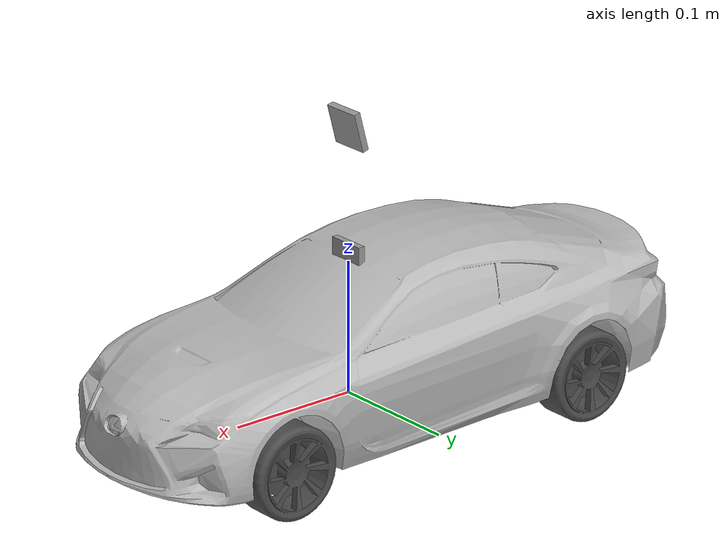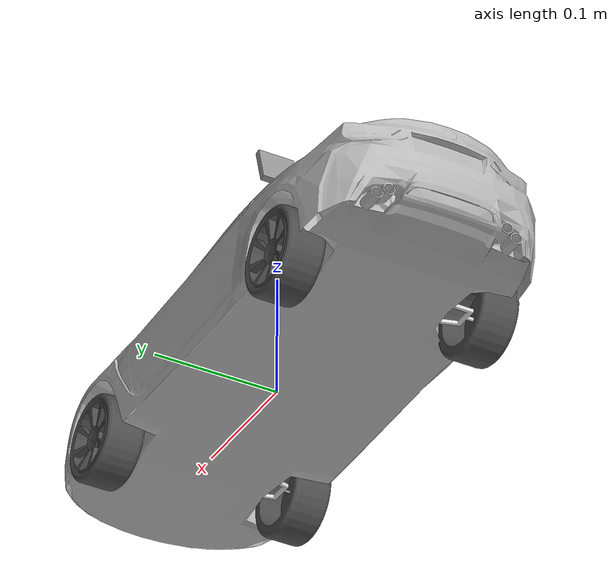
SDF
<?xml version='1.0'?>
<sdf version='1.6'>
  <model name='automobile'>
    <link name='base_link'>
      <include>
        <uri>model://base_link</uri>
        <pose>0 0 0 0 0 0</pose>
      </include>
    </link>
    <joint name='mycar_joint' type='fixed'>
      <parent>chassis::link</parent>
      <child>base_link</child>
    </joint>
    <include>
      <uri>model://chassis</uri>
      <pose>0 0 0 0 0 0</pose>
    </include>
    <!-- including a left rear wheel -->
    <include>
      <uri>model://wheel_left</uri>
      <pose>-0.152 0.081 0 0 0 0</pose>
      <name>wheel_rear_left</name>
    </include>
    <!-- including a front rear wheel -->
    <include>
      <uri>model://wheel_right</uri>
      <pose>-0.152 -0.081 0 0 0 0</pose>
      <name>wheel_rear_right</name>
    </include>
    <!-- including a left steering comp. -->
    <include>
      <uri>model://steering_column</uri>
      <pose>0.112 0.0725 0 0 0 0</pose>
      <name>steer_left</name>
    </include>
    <!-- including a right steering comp. -->
    <include>
      <uri>model://steering_column</uri>
      <pose>0.112 -0.0725 0 0 0 0</pose>
      <name>steer_right</name>
    </include>
    <!-- including a left front wheel -->
    <include>
      <uri>model://wheel_left</uri>
      <pose>0.118 0.081 0 0 0 0</pose>
      <name>wheel_front_left</name>
    </include>
    <!-- including a right front wheel -->
    <include>
      <uri>model://wheel_right</uri>
      <pose>0.118 -0.081 0 0 0 0</pose>
      <name>wheel_front_right</name>
    </include>

    <!-- including the camera link -->
    <include>
      <uri>model://camera</uri>
      <pose>0 0 0.2 0 0.2617 0</pose>
      <name>camera</name>
    </include>

    <!-- including the laser link -->
    <include>
      <uri>model://laser</uri>
      <pose>0 0 0.1 0 0 0</pose>
      <name>laser</name>
    </include>

    <!-- includeing the car body -->
    <include>
      <uri>model://car_body</uri>
      <pose>-0.024 0.0 -0.028 0 0.0 0</pose>
      <name>car_body</name>
    </include>

    <!-- LIST OF JOINTS -->
    <joint name='joint_leftrear_rim' type='revolute'>
      <parent>chassis::link</parent>
      <child>wheel_rear_left::link_rim</child>
      <pose frame=''>0 0 0 0 -0 0</pose>
      <axis>
        <xyz>0 0 -1</xyz>
        <use_parent_model_frame>0</use_parent_model_frame>
        <limit>
          <lower>-1.79769e+308</lower>
          <upper>1.79769e+308</upper>
          <effort>-1</effort>
          <velocity>-1</velocity>
        </limit>
        <dynamics>
          <spring_reference>0</spring_reference>
          <spring_stiffness>0</spring_stiffness>
          <damping>0</damping>
          <friction>0</friction>
        </dynamics>
      </axis>
      <physics>
        <ode>
          <limit>
            <cfm>0</cfm>
            <erp>0.2</erp>
          </limit>
          <suspension>
            <cfm>0</cfm>
            <erp>0.2</erp>
          </suspension>
        </ode>
      </physics>
    </joint>

    <joint name='joint_rightrear_rim' type='revolute'>
      <parent>chassis::link</parent>
      <child>wheel_rear_right::link_rim</child>
      <pose frame=''>0 0 0 0 -0 0</pose>
      <axis>
        <xyz>0 0 -1</xyz>
        <use_parent_model_frame>0</use_parent_model_frame>
        <limit>
          <lower>-1.79769e+308</lower>
          <upper>1.79769e+308</upper>
          <effort>-1</effort>
          <velocity>-1</velocity>
        </limit>
        <dynamics>
          <spring_reference>0</spring_reference>
          <spring_stiffness>0</spring_stiffness>
          <damping>0</damping>
          <friction>0</friction>
        </dynamics>
      </axis>
      <physics>
        <ode>
          <limit>
            <cfm>0</cfm>
            <erp>0.2</erp>
          </limit>
          <suspension>
            <cfm>0</cfm>
            <erp>0.2</erp>
          </suspension>
        </ode>
      </physics>
    </joint>

    <!-- Front right joint between the chassis and the steering comp. -->
    <joint name='joint_leftfront_steer' type='revolute'>
      <parent>chassis::link</parent>
      <child>steer_left::link_steer</child>
      <pose frame=''>0 0 0.005 0 -0 0</pose>
      <axis>
        <xyz>0 1 0</xyz>
        <use_parent_model_frame>0</use_parent_model_frame>
        <limit>
          <lower>-1.79769e+308</lower>
          <upper>1.79769e+308</upper>
          <effort>-1</effort>
          <velocity>-1</velocity>
        </limit>
        <dynamics>
          <spring_reference>0</spring_reference>
          <spring_stiffness>0</spring_stiffness>
          <damping>0</damping>
          <friction>0</friction>
        </dynamics>
      </axis>
      <physics>
        <ode>
          <limit>
            <cfm>0</cfm>
            <erp>0.2</erp>
          </limit>
          <suspension>
            <cfm>0</cfm>
            <erp>0.2</erp>
          </suspension>
        </ode>
      </physics>
    </joint>
    <!-- Front left joint between the chassis and the steering comp. -->
    <joint name='joint_rightfront_steer' type='revolute'>
      <parent>chassis::link</parent>
      <child>steer_right::link_steer</child>
      <pose frame=''>0 0 -0.005 0 -0 0</pose>
      <axis>
        <xyz>0 1 0</xyz>
        <use_parent_model_frame>0</use_parent_model_frame>
        <limit>
          <lower>-1.79769e+308</lower>
          <upper>1.79769e+308</upper>
          <effort>-1</effort>
          <velocity>-1</velocity>
        </limit>
        <dynamics>
          <spring_reference>0</spring_reference>
          <spring_stiffness>0</spring_stiffness>
          <damping>0</damping>
          <friction>0</friction>
        </dynamics>
      </axis>
      <physics>
        <ode>
          <limit>
            <cfm>0</cfm>
            <erp>0.2</erp>
          </limit>
          <suspension>
            <cfm>0</cfm>
            <erp>0.2</erp>
          </suspension>
        </ode>
      </physics>
    </joint>

    <!-- Right joint between the steering and the rim   -->
    <joint name='joint_rightfront_rim' type='revolute'>
      <parent>steer_right::link_steer</parent>
      <child>wheel_front_right::link_rim</child>
      <pose frame=''>0 0 0 0 -0 0</pose>
      <axis>
        <xyz>0 0 -1</xyz>
        <use_parent_model_frame>0</use_parent_model_frame>
        <limit>
          <lower>-1.79769e+308</lower>
          <upper>1.79769e+308</upper>
          <effort>-1</effort>
          <velocity>-1</velocity>
        </limit>
        <dynamics>
          <spring_reference>0</spring_reference>
          <spring_stiffness>0</spring_stiffness>
          <damping>0</damping>
          <friction>0</friction>
        </dynamics>
      </axis>
      <physics>
        <ode>
          <limit>
            <cfm>0</cfm>
            <erp>0.2</erp>
          </limit>
          <suspension>
            <cfm>0</cfm>
            <erp>0.2</erp>
          </suspension>
        </ode>
      </physics>
    </joint>

    <!-- Left joint between the steering and the rim   -->
    <joint name='joint_leftfront_rim' type='revolute'>
      <parent>steer_left::link_steer</parent>
      <child>wheel_front_left::link_rim</child>
      <pose frame=''>0 0 0 0 -0 0</pose>
      <axis>
        <xyz>0 0 -1</xyz>
        <use_parent_model_frame>0</use_parent_model_frame>
        <limit>
          <lower>-1.79769e+308</lower>
          <upper>1.79769e+308</upper>
          <effort>-1</effort>
          <velocity>-1</velocity>
        </limit>
        <dynamics>
          <spring_reference>0</spring_reference>
          <spring_stiffness>0</spring_stiffness>
          <damping>0</damping>
          <friction>0</friction>
        </dynamics>
      </axis>
      <physics>
        <ode>
          <limit>
            <cfm>0</cfm>
            <erp>0.2</erp>
          </limit>
          <suspension>
            <cfm>0</cfm>
            <erp>0.2</erp>
          </suspension>
        </ode>
      </physics>
    </joint>

    <!-- fixed joint for the car body -->
    <joint name='joint_body' type='fixed'>
      <parent>chassis::link</parent>
      <child>car_body::link</child>
      <pose frame=''>0 0 0 0 -0 0</pose>
      <physics>
        <ode>
          <limit>
            <cfm>0</cfm>
            <erp>0.2</erp>
          </limit>
          <suspension>
            <cfm>0</cfm>
            <erp>0.2</erp>
          </suspension>
        </ode>
      </physics>
    </joint>

    <!-- fixed joint for the camera -->
    <joint name='joint_camera' type='fixed'>
      <parent>chassis::link</parent>
      <child>camera::link_camera</child>
      <pose frame=''>0 0 0 0 -0 0</pose>
      <physics>
        <ode>
          <limit>
            <cfm>0</cfm>
            <erp>0.2</erp>
          </limit>
          <suspension>
            <cfm>0</cfm>
            <erp>0.2</erp>
          </suspension>
        </ode>
      </physics>
    </joint>

    <!-- fixed joint for the laser -->
    <joint name='joint_laser' type='fixed'>
      <parent>chassis::link</parent>
      <child>laser::link_laser</child>
      <pose frame=''>0 0 0 0 -0 0</pose>
      <physics>
        <ode>
          <limit>
            <cfm>0</cfm>
            <erp>0.2</erp>
          </limit>
          <suspension>
            <cfm>0</cfm>
            <erp>0.2</erp>
          </suspension>
        </ode>
      </physics>
    </joint>

    <!-- Plugin  -->
    <plugin name='CarLikeRobotPlugin' filename='libcar_plugin.so'>
      <wheelbase>0.26</wheelbase>
      <axletrack>0.162</axletrack>
      <wheelradius>0.0325</wheelradius>
      <speed_wheel_joints>
        <front_wheel_joints>
          <leftjoint>joint_leftfront_rim</leftjoint>
          <rightjoint>joint_rightfront_rim</rightjoint>
        </front_wheel_joints>
        <rear_wheel_joints>
          <leftjoint>joint_leftrear_rim</leftjoint>
          <rightjoint>joint_rightrear_rim</rightjoint>
        </rear_wheel_joints>
        <kp>0.01</kp>
        <ki>0.0</ki>
        <kd>0.0</kd>
      </speed_wheel_joints>
      <steer_wheel_joints>
        <leftjoint>joint_leftfront_steer</leftjoint>
        <rightjoint>joint_rightfront_steer</rightjoint>
        <kp>10</kp>
        <ki>0.0</ki>
        <kd>0.1</kd>
      </steer_wheel_joints>
      <initial_steer>0.0</initial_steer>
      <initial_speed>0.0</initial_speed>
      <robotNamespace>/</robotNamespace>
    </plugin>

    <!-- Plugin for publishing TF for the chassis -->

    <plugin name='bno055' filename='libbno055_plugin.so'> </plugin>
    <plugin name='gps' filename='libgps_plugin.so'> </plugin>

  </model>
</sdf>

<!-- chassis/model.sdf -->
<sdf version='1.6'>
  <model name='chassis'>
    <link name='link'>
      <inertial>
        <mass>0.26244</mass>
        <inertia>
          <ixx>0.00283444</ixx>
          <ixy>0</ixy>
          <ixz>0</ixz>
          <iyy>0.00039867</iyy>
          <iyz>0</iyz>
          <izz>0.00323293</izz>
        </inertia>
        <pose frame=''>0 0 0 0 -0 0</pose>
      </inertial>
      <pose frame=''>0 0 0 0 0 1.5708</pose>
      <gravity>1</gravity>
      <kinematic>0</kinematic>
      <enable_wind>0</enable_wind>
      <visual name='visual'>
        <pose frame=''>0 0 -0.0065 0 0 -1.57079</pose>
        <geometry>
          <mesh>
            <uri>model://chassis/meshes/chassisV5.dae</uri>
            <scale>1 1 1</scale>
          </mesh>
        </geometry>
        <material>
          <lighting>1</lighting>
          <shader type='vertex'>
            <normal_map>__default__</normal_map>
          </shader>
          <ambient>0.6 0.6 0.6 1</ambient>
          <diffuse>0.85 0.85 0.85 1</diffuse>
          <specular>0.6 0.6 0.6 1</specular>
          <emissive>0 0 0 1</emissive>
        </material>
        <transparency>0</transparency>
        <cast_shadows>1</cast_shadows>
      </visual>
      <collision name='collision'>
        <laser_retro>0</laser_retro>
        <max_contacts>10</max_contacts>
        <pose frame=''>0 0 0 0 -0 0</pose>
        <geometry>
          <box>
            <size>0.135 0.36 0.002</size>
          </box>
        </geometry>
        <surface>
          <friction>
            <ode>
              <mu>1</mu>
              <mu2>1</mu2>
              <fdir1>0 0 0</fdir1>
              <slip1>0</slip1>
              <slip2>0</slip2>
            </ode>
            <torsional>
              <coefficient>1</coefficient>
              <patch_radius>0</patch_radius>
              <surface_radius>0</surface_radius>
              <use_patch_radius>1</use_patch_radius>
              <ode>
                <slip>0</slip>
              </ode>
            </torsional>
          </friction>
          <bounce>
            <restitution_coefficient>0</restitution_coefficient>
            <threshold>1e+06</threshold>
          </bounce>
          <contact>
            <collide_without_contact>0</collide_without_contact>
            <collide_without_contact_bitmask>1</collide_without_contact_bitmask>
            <collide_bitmask>1</collide_bitmask>
            <ode>
              <soft_cfm>0</soft_cfm>
              <soft_erp>0.2</soft_erp>
              <kp>1e+13</kp>
              <kd>1</kd>
              <max_vel>0.01</max_vel>
              <min_depth>0</min_depth>
            </ode>
            <bullet>
              <split_impulse>1</split_impulse>
              <split_impulse_penetration_threshold>-0.01</split_impulse_penetration_threshold>
              <soft_cfm>0</soft_cfm>
              <soft_erp>0.2</soft_erp>
              <kp>1e+13</kp>
              <kd>1</kd>
            </bullet>
          </contact>
        </surface>
      </collision>
    </link>
  </model>
</sdf>

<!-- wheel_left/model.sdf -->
<sdf version='1.6'>
  <model name='wheel_left'>

    <link name='link_rim'>
      <inertial>
        <mass>0.038</mass>
        <inertia>
          <ixx>0.00001283</ixx>
          <ixy>0</ixy>
          <ixz>0</ixz>
          <iyy>0.00001283</iyy>
          <iyz>0</iyz>
          <izz>0.00002069</izz>
        </inertia>
        <pose frame=''>0 0 0 0 -0 0</pose>
      </inertial>
      <pose frame=''>0.0 0.0 0 1.5708 0 0</pose>
      <gravity>1</gravity>
      <kinematic>0</kinematic>
      <enable_wind>0</enable_wind>
      <visual name='visual'>
       <pose frame=''>0 0 0 -1.5708 0 0</pose>
       <geometry>
          <mesh>
            <uri>model://wheel_left/meshes/rim.dae</uri>
            <scale>1 1 1</scale>
          </mesh>
        </geometry>
        <material>
          <lighting>1</lighting>
          <shader type='vertex'>
            <normal_map>__default__</normal_map>
          </shader>
          <ambient>0.2 0.2 0.2 1</ambient>
          <diffuse>0.3 0.3 0.3 1</diffuse>
          <specular>0.5 0.5 0.5 1</specular>
          <emissive>0.0 0.0 0.0 0.0</emissive>
        </material>
        <transparency>0</transparency>
        <cast_shadows>1</cast_shadows>
      </visual>
      <collision name='collision'>
        <laser_retro>0</laser_retro>
        <max_contacts>10</max_contacts>
        <pose frame=''>0 0 0 0 -0 0</pose>
        <geometry>
          <cylinder>
            <radius>0.033000</radius>
            <length>0.028000</length>
          </cylinder>
        </geometry>
        <surface>
          <friction>
            <ode>
              <mu>0.7</mu>
              <mu2>0.7</mu2>
              <fdir1>0 0 0</fdir1>
              <slip1>0</slip1>
              <slip2>0</slip2>
            </ode>
            <torsional>
              <coefficient>1</coefficient>
              <patch_radius>0</patch_radius>
              <surface_radius>0</surface_radius>
              <use_patch_radius>1</use_patch_radius>
              <ode>
                <slip>0</slip>
              </ode>
            </torsional>
          </friction>
          <bounce>
            <restitution_coefficient>0</restitution_coefficient>
            <threshold>1e+06</threshold>
          </bounce>
          <contact>
            <collide_without_contact>0</collide_without_contact>
            <collide_without_contact_bitmask>1</collide_without_contact_bitmask>
            <collide_bitmask>1</collide_bitmask>
            <ode>
              <soft_cfm>0</soft_cfm>
              <soft_erp>0.2</soft_erp>
              <kp>1e+07</kp>
              <kd>1</kd>
              <max_vel>0.01</max_vel>
              <min_depth>0</min_depth>
            </ode>
            <bullet>
              <split_impulse>1</split_impulse>
              <split_impulse_penetration_threshold>-0.01</split_impulse_penetration_threshold>
              <soft_cfm>0</soft_cfm>
              <soft_erp>0.2</soft_erp>
              <kp>1e+07</kp>
              <kd>1</kd>
            </bullet>
          </contact>
        </surface>
      </collision>
    </link>

  </model>
</sdf>

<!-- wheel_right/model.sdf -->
<sdf version='1.6'>
  <model name='wheel_right'>

    <link name='link_rim'>
      <inertial>
        <mass>0.038</mass>
        <inertia>
          <ixx>0.00001283</ixx>
          <ixy>0</ixy>
          <ixz>0</ixz>
          <iyy>0.00001283</iyy>
          <iyz>0</iyz>
          <izz>0.00002069</izz>
        </inertia>
        <pose frame=''>0 0 0 0 -0 0</pose>
      </inertial>
      <pose frame=''>0.0 0.0 0 1.5708 0 0</pose>
      <gravity>1</gravity>
      <kinematic>0</kinematic>
      <enable_wind>0</enable_wind>
      <visual name='visual'>
       <pose frame=''>0 0 0 -1.5708 0 0</pose>
       <geometry>
          <mesh>
            <uri>model://wheel_right/meshes/rim.dae</uri>
            <scale>1 1 1</scale>
          </mesh>
        </geometry>
        <material>
          <lighting>1</lighting>
          <shader type='vertex'>
            <normal_map>__default__</normal_map>
          </shader>
          <ambient>0.2 0.2 0.2 1</ambient>
          <diffuse>0.3 0.3 0.3 1</diffuse>
          <specular>0.5 0.5 0.5 1</specular>
          <emissive>0.0 0.0 0.0 0.0</emissive>
        </material>
        <transparency>0</transparency>
        <cast_shadows>1</cast_shadows>
      </visual>
      <collision name='collision'>
        <laser_retro>0</laser_retro>
        <max_contacts>10</max_contacts>
        <pose frame=''>0 0 0 0 -0 0</pose>
        <geometry>
          <cylinder>
            <radius>0.033000</radius>
            <length>0.028000</length>
          </cylinder>
        </geometry>
        <surface>
          <friction>
            <ode>
              <mu>0.7</mu>
              <mu2>0.7</mu2>
              <fdir1>0 0 0</fdir1>
              <slip1>0</slip1>
              <slip2>0</slip2>
            </ode>
            <torsional>
              <coefficient>1</coefficient>
              <patch_radius>0</patch_radius>
              <surface_radius>0</surface_radius>
              <use_patch_radius>1</use_patch_radius>
              <ode>
                <slip>0</slip>
              </ode>
            </torsional>
          </friction>
          <bounce>
            <restitution_coefficient>0</restitution_coefficient>
            <threshold>1e+06</threshold>
          </bounce>
          <contact>
            <collide_without_contact>0</collide_without_contact>
            <collide_without_contact_bitmask>1</collide_without_contact_bitmask>
            <collide_bitmask>1</collide_bitmask>
            <ode>
              <soft_cfm>0</soft_cfm>
              <soft_erp>0.2</soft_erp>
              <kp>1e+07</kp>
              <kd>1</kd>
              <max_vel>0.01</max_vel>
              <min_depth>0</min_depth>
            </ode>
            <bullet>
              <split_impulse>1</split_impulse>
              <split_impulse_penetration_threshold>-0.01</split_impulse_penetration_threshold>
              <soft_cfm>0</soft_cfm>
              <soft_erp>0.2</soft_erp>
              <kp>1e+07</kp>
              <kd>1</kd>
            </bullet>
          </contact>
        </surface>
      </collision>
    </link>

  </model>
</sdf>

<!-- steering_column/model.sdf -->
<sdf version='1.6'>
  <model name='steering_column'>
    <link name='link_steer'>
      <inertial>
        <mass>0.001</mass>
        <inertia>
          <ixx>0.00014583</ixx>
          <ixy>0</ixy>
          <ixz>0</ixz>
          <iyy>0.00014583</iyy>
          <iyz>0</iyz>
          <izz>0.000125</izz>
        </inertia>
        <pose frame=''>0 0 0 0 -0 0</pose>
      </inertial>
      <pose frame=''>0 0 0 1.5708 0 0</pose>
      <gravity>1</gravity>
      <self_collide>0</self_collide>
      <kinematic>0</kinematic>
      <enable_wind>0</enable_wind>
      <visual name='visual'>
        <pose frame=''>0 0 0 0 -0 0</pose>
        <geometry>
          <cylinder>
            <radius>0.001</radius>
            <length>0.01</length>
          </cylinder>
        </geometry>
        <material>
          <lighting>1</lighting>
          <script>
            <uri>file://media/materials/scripts/gazebo.material</uri>
            <name>Gazebo/Grey</name>
          </script>
          <shader type='vertex'>
            <normal_map>__default__</normal_map>
          </shader>
          <ambient>0.3 0.3 0.3 1</ambient>
          <diffuse>0.7 0.7 0.7 1</diffuse>
          <specular>0.01 0.01 0.01 1</specular>
          <emissive>0 0 0 1</emissive>
        </material>
        <transparency>0</transparency>
        <cast_shadows>1</cast_shadows>
      </visual>
      <collision name='collision'>
        <laser_retro>0</laser_retro>
        <max_contacts>10</max_contacts>
        <pose frame=''>0 0 0 0 -0 0</pose>
        <geometry>
          <cylinder>
            <radius>0.001</radius>
            <length>0.01</length>
          </cylinder>
        </geometry>
        <surface>
          <friction>
            <ode>
              <mu>1</mu>
              <mu2>1</mu2>
              <fdir1>0 0 0</fdir1>
              <slip1>0</slip1>
              <slip2>0</slip2>
            </ode>
            <torsional>
              <coefficient>1</coefficient>
              <patch_radius>0</patch_radius>
              <surface_radius>0</surface_radius>
              <use_patch_radius>1</use_patch_radius>
              <ode>
                <slip>0</slip>
              </ode>
            </torsional>
          </friction>
          <bounce>
            <restitution_coefficient>0</restitution_coefficient>
            <threshold>1e+06</threshold>
          </bounce>
          <contact>
            <collide_without_contact>0</collide_without_contact>
            <collide_without_contact_bitmask>1</collide_without_contact_bitmask>
            <collide_bitmask>1</collide_bitmask>
            <ode>
              <soft_cfm>0</soft_cfm>
              <soft_erp>0.2</soft_erp>
              <kp>1e+13</kp>
              <kd>1</kd>
              <max_vel>0.01</max_vel>
              <min_depth>0</min_depth>
            </ode>
            <bullet>
              <split_impulse>1</split_impulse>
              <split_impulse_penetration_threshold>-0.01</split_impulse_penetration_threshold>
              <soft_cfm>0</soft_cfm>
              <soft_erp>0.2</soft_erp>
              <kp>1e+13</kp>
              <kd>1</kd>
            </bullet>
          </contact>
        </surface>
      </collision>
    </link>

  </model>
</sdf>

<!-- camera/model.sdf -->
<sdf version='1.6'>
  <model name='camera'>
    <link name='link_camera'>
      <inertial>
        <mass>0.0052875</mass>
        <inertia>
          <ixx>4.1e-07</ixx>
          <ixy>0</ixy>
          <ixz>0</ixz>
          <iyy>7.9e-07</iyy>
          <iyz>0</iyz>
          <izz>4.1e-07</izz>
        </inertia>
        <pose frame=''>0 0 0 0 -0 0</pose>
      </inertial>
      <pose frame=''>0 0 0 0 -0 0</pose>
      <gravity>1</gravity>
      <self_collide>0</self_collide>
      <kinematic>0</kinematic>
      <enable_wind>0</enable_wind>
      <visual name='visual'>
        <pose frame=''>0 0 0 0 -0 0</pose>
        <geometry>
          <box>
            <size>0.005 0.03 0.03</size>
          </box>
        </geometry>
        <material>
          <lighting>1</lighting>
          <script>
            <uri>file://media/materials/scripts/gazebo.material</uri>
            <name>Gazebo/Grey</name>
          </script>
          <shader type='vertex'>
            <normal_map>__default__</normal_map>
          </shader>
          <ambient>0.3 0.3 0.3 1</ambient>
          <diffuse>0.7 0.7 0.7 1</diffuse>
          <specular>0.01 0.01 0.01 1</specular>
          <emissive>0 0 0 1</emissive>
        </material>
        <transparency>0</transparency>
        <cast_shadows>1</cast_shadows>
      </visual>
      <collision name='collision'>
        <laser_retro>0</laser_retro>
        <max_contacts>10</max_contacts>
        <pose frame=''>0 0 0 0 -0 0</pose>
        <geometry>
          <box>
            <size>0.005 0.03 0.03</size>
          </box>
        </geometry>
        <surface>
          <friction>
            <ode>
              <mu>1</mu>
              <mu2>1</mu2>
              <fdir1>0 0 0</fdir1>
              <slip1>0</slip1>
              <slip2>0</slip2>
            </ode>
            <torsional>
              <coefficient>1</coefficient>
              <patch_radius>0</patch_radius>
              <surface_radius>0</surface_radius>
              <use_patch_radius>1</use_patch_radius>
              <ode>
                <slip>0</slip>
              </ode>
            </torsional>
          </friction>
          <bounce>
            <restitution_coefficient>0</restitution_coefficient>
            <threshold>1e+06</threshold>
          </bounce>
          <contact>
            <collide_without_contact>0</collide_without_contact>
            <collide_without_contact_bitmask>1</collide_without_contact_bitmask>
            <collide_bitmask>1</collide_bitmask>
            <ode>
              <soft_cfm>0</soft_cfm>
              <soft_erp>0.2</soft_erp>
              <kp>1e+13</kp>
              <kd>1</kd>
              <max_vel>0.01</max_vel>
              <min_depth>0</min_depth>
            </ode>
            <bullet>
              <split_impulse>1</split_impulse>
              <split_impulse_penetration_threshold>-0.01</split_impulse_penetration_threshold>
              <soft_cfm>0</soft_cfm>
              <soft_erp>0.2</soft_erp>
              <kp>1e+13</kp>
              <kd>1</kd>
            </bullet>
          </contact>
        </surface>
      </collision>

    <sensor name="imu_sensor" type="imu">
        <always_on>true</always_on>
        <update_rate>200</update_rate>
        <visualize>true</visualize>
        <topic>__default_topic__</topic>
        <plugin filename="libgazebo_ros_imu_sensor.so" name="imu_plugin">
          <robotNamespace/>
          <topicName>/camera/imu</topicName>
          <bodyName>imu_link</bodyName>
          <updateRateHZ>200.0</updateRateHZ>
          <gaussianNoise>0.02</gaussianNoise>
          <xyzOffset>0 0 0</xyzOffset>
          <rpyOffset>0 0 0</rpyOffset>
          <frameName>realsense</frameName>
          <initialOrientationAsReference>false</initialOrientationAsReference>
        </plugin>
      </sensor>
      <sensor name="color" type="camera">
        <pose frame="">0 -0.046 0.004 0 0 0</pose>
        <camera name="__default__">
          <horizontal_fov>1.047</horizontal_fov>
          <image>
            <width>640</width>
            <height>480</height>
            <format>RGB_INT8</format>
          </image>
          <clip>
            <near>0.1</near>
            <far>100</far>
          </clip>
          <noise>
            <type>gaussian</type>
            <mean>0.0</mean>
            <stddev>0.007</stddev>
          </noise>
        </camera>
        <always_on>1</always_on>
        <update_rate>60</update_rate>
        <visualize>1</visualize>
      </sensor>
      <sensor name="ired1" type="camera">
        <pose frame="">0 -0.06 0.004 0 0 0</pose>
        <camera name="__default__">
          <horizontal_fov>1.047</horizontal_fov>
          <image>
            <width>640</width>
            <height>480</height>
            <format>L_INT8</format>
          </image>
          <clip>
            <near>0.1</near>
            <far>100</far>
          </clip>
          <noise>
            <type>gaussian</type>
            <mean>0.0</mean>
            <stddev>0.007</stddev>
          </noise>
        </camera>
        <always_on>1</always_on>
        <update_rate>60</update_rate>
        <visualize>0</visualize>
      </sensor>
      <sensor name="ired2" type="camera">
        <pose frame="">0 0.01 0.004 0 0 0</pose>
        <camera name="__default__">
          <horizontal_fov>1.047</horizontal_fov>
          <image>
            <width>640</width>
            <height>480</height>
            <format>L_INT8</format>
          </image>
          <clip>
            <near>0.1</near>
            <far>100</far>
          </clip>
          <noise>
            <type>gaussian</type>
            <mean>0.0</mean>
            <stddev>0.007</stddev>
          </noise>
        </camera>
        <always_on>1</always_on>
        <update_rate>60</update_rate>
        <visualize>0</visualize>
      </sensor>
      <sensor name="depth" type="depth">
        <pose frame="">0 -0.03 0.004 0 0 0</pose>
        <camera name="__default__">
          <horizontal_fov>1.047</horizontal_fov>
          <image>
            <width>640</width>
            <height>480</height>
          </image>
          <clip>
            <near>0.1</near>
            <far>100</far>
          </clip>
          <noise>
            <type>gaussian</type>
            <mean>0.0</mean>
            <stddev>0.007</stddev>
          </noise>
        </camera>
        <always_on>1</always_on>
        <update_rate>60</update_rate>
        <visualize>0</visualize>
      </sensor>
    </link>
    <plugin name="camera" filename="librealsense_gazebo_plugin.so">
        <depthUpdateRate>30.0</depthUpdateRate>
        <colorUpdateRate>30.0</colorUpdateRate>
        <infraredUpdateRate>30.0</infraredUpdateRate>
        <depthTopicName>depth/image_raw</depthTopicName>
        <depthCameraInfoTopicName>depth/camera_info</depthCameraInfoTopicName>
        <colorTopicName>color/image_raw</colorTopicName>
        <colorCameraInfoTopicName>color/camera_info</colorCameraInfoTopicName>
        <infrared1TopicName>infra1/image_raw</infrared1TopicName>
        <infrared1CameraInfoTopicName>infra1/camera_info</infrared1CameraInfoTopicName>
        <infrared2TopicName>infra2/image_raw</infrared2TopicName>
        <infrared2CameraInfoTopicName>infra2/camera_info</infrared2CameraInfoTopicName>
        <colorOpticalframeName>camera_color_optical_frame</colorOpticalframeName>
        <depthOpticalframeName>camera_depth_optical_frame</depthOpticalframeName>
        <infrared1OpticalframeName>camera_infrared1_optical_frame</infrared1OpticalframeName>
        <infrared2OpticalframeName>camera_infrared2_optical_frame</infrared2OpticalframeName>
        <rangeMinDepth>0.2</rangeMinDepth>
        <rangeMaxDepth>10.0</rangeMaxDepth>
        <pointCloud>true</pointCloud>
        <pointCloudTopicName>depth/color/points</pointCloudTopicName>
        <pointCloudCutoff>0.25</pointCloudCutoff>
        <pointCloudCutoffMax>9.0</pointCloudCutoffMax>
      </plugin>

  </model>
</sdf>

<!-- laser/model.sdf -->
<sdf version='1.6'>
  <model name='laser'>
    <link name='link_laser'>
      <inertial>
        <mass>0.0052875</mass>
        <inertia>
          <ixx>4.1e-07</ixx>
          <ixy>0</ixy>
          <ixz>0</ixz>
          <iyy>7.9e-07</iyy>
          <iyz>0</iyz>
          <izz>4.1e-07</izz>
        </inertia>
        <pose frame=''>0 0 0 0 -0 0</pose>
      </inertial>
      <pose frame=''>0 0 0 0 -0 0</pose>
      <gravity>1</gravity>
      <self_collide>0</self_collide>
      <kinematic>0</kinematic>
      <enable_wind>0</enable_wind>
      <visual name='visual'>
        <pose frame=''>0 0 0 0 -0 0</pose>
        <geometry>
          <box>
            <size>0.005 0.03 0.03</size>
          </box>
        </geometry>
        <material>
          <lighting>1</lighting>
          <script>
            <uri>file://media/materials/scripts/gazebo.material</uri>
            <name>Gazebo/Grey</name>
          </script>
          <shader type='vertex'>
            <normal_map>__default__</normal_map>
          </shader>
          <ambient>0.3 0.3 0.3 1</ambient>
          <diffuse>0.7 0.7 0.7 1</diffuse>
          <specular>0.01 0.01 0.01 1</specular>
          <emissive>0 0 0 1</emissive>
        </material>
        <transparency>0</transparency>
        <cast_shadows>1</cast_shadows>
      </visual>
      <collision name='collision'>
        <laser_retro>0</laser_retro>
        <max_contacts>10</max_contacts>
        <pose frame=''>0 0 0 0 -0 0</pose>
        <geometry>
          <box>
            <size>0.005 0.03 0.03</size>
          </box>
        </geometry>
        <surface>
          <friction>
            <ode>
              <mu>1</mu>
              <mu2>1</mu2>
              <fdir1>0 0 0</fdir1>
              <slip1>0</slip1>
              <slip2>0</slip2>
            </ode>
            <torsional>
              <coefficient>1</coefficient>
              <patch_radius>0</patch_radius>
              <surface_radius>0</surface_radius>
              <use_patch_radius>1</use_patch_radius>
              <ode>
                <slip>0</slip>
              </ode>
            </torsional>
          </friction>
          <bounce>
            <restitution_coefficient>0</restitution_coefficient>
            <threshold>1e+06</threshold>
          </bounce>
          <contact>
            <collide_without_contact>0</collide_without_contact>
            <collide_without_contact_bitmask>1</collide_without_contact_bitmask>
            <collide_bitmask>1</collide_bitmask>
            <ode>
              <soft_cfm>0</soft_cfm>
              <soft_erp>0.2</soft_erp>
              <kp>1e+13</kp>
              <kd>1</kd>
              <max_vel>0.01</max_vel>
              <min_depth>0</min_depth>
            </ode>
            <bullet>
              <split_impulse>1</split_impulse>
              <split_impulse_penetration_threshold>-0.01</split_impulse_penetration_threshold>
              <soft_cfm>0</soft_cfm>
              <soft_erp>0.2</soft_erp>
              <kp>1e+13</kp>
              <kd>1</kd>
            </bullet>
          </contact>
        </surface>
      </collision>

      <sensor type="ray" name="rplidar">
        <pose>0 0 0 0 0 0</pose>
        <visualize>true</visualize>
        <update_rate>10</update_rate>
        <ray>
          <scan>
            <horizontal>
              <samples>360</samples>
              <resolution>1</resolution>
              <min_angle>-3</min_angle>
              <max_angle>3</max_angle>
            </horizontal>
          </scan>
          <range>
            <min>0.03</min>
            <max>10.0</max>
            <resolution>0.01</resolution>
          </range>
          <noise>
            <type>gaussian</type>
            <mean>0.0</mean>
            <stddev>0.05</stddev>
          </noise>
        </ray>

        <plugin name="gazebo_rplidar" filename="libgazebo_ros_laser.so">
          <topicName>/car1/scan</topicName>
          <frameName>laser</frameName>
	  <robotNamespace></robotNamespace>
        </plugin>

      </sensor>
    </link>
  </model>
</sdf>

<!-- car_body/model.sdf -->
<sdf version='1.6'>
  <model name='body'>
    <link name='link'>
      <inertial>
        <mass>1</mass>
        <inertia>
          <ixx>0.166667</ixx>
          <ixy>0</ixy>
          <ixz>0</ixz>
          <iyy>0.166667</iyy>
          <iyz>0</iyz>
          <izz>0.166667</izz>
        </inertia>
      </inertial>
      <pose frame=''>0 -0 0 0 -0 0</pose>
      <visual name='visual'>
        <pose frame=''>0 0 0 0 -0 0</pose>
        <geometry>
          <mesh>
            <uri>model://car_body/meshes/CarBody.dae</uri>
            <scale>1 1 1</scale>
          </mesh>
        </geometry>
        <material>
            <script>
              <uri>model://car_body/materials/scripts</uri>
              <uri>model://car_body/materials/textures</uri>
              <name>CarBody/Image</name>
            </script>
        </material>
        <transparency>0</transparency>
        <cast_shadows>1</cast_shadows>
      </visual>
    </link>
    <static>0</static>
    <allow_auto_disable>1</allow_auto_disable>
  </model>
</sdf>
